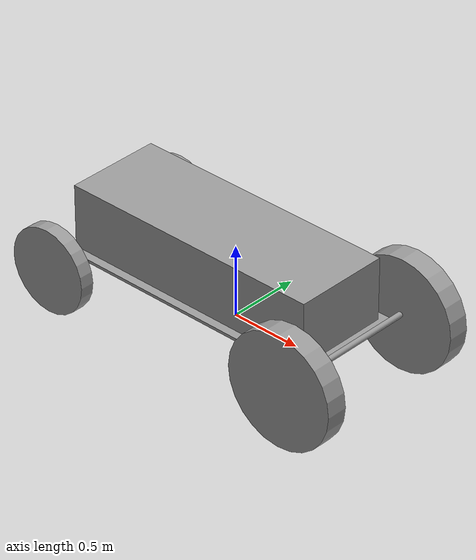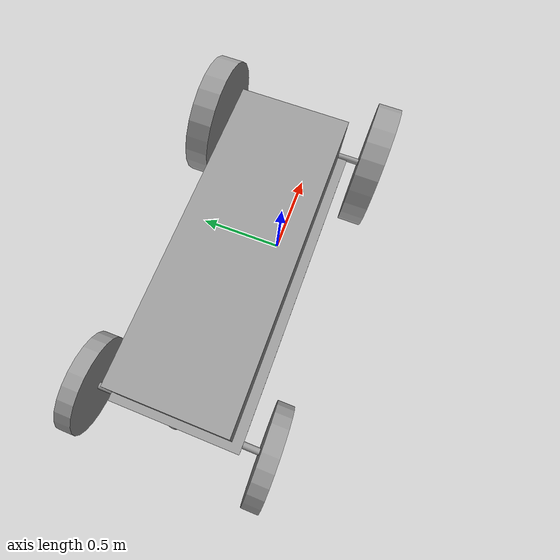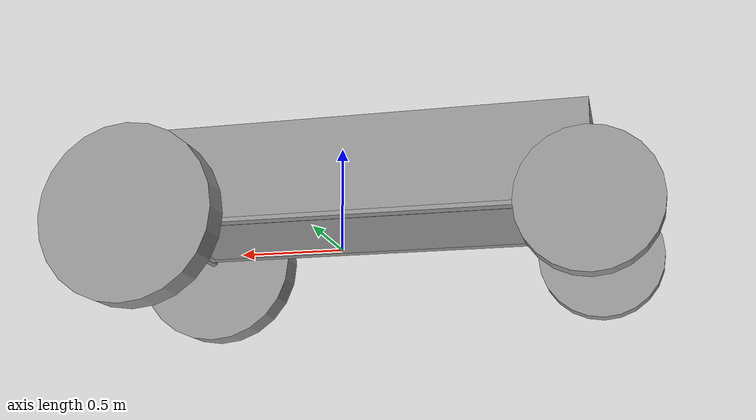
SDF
<?xml version='1.0'?>
<sdf version='1.7'>
  <model name='cart'>
    <link name='link_0'>
      <inertial>
        <mass>1</mass>
        <inertia>
          <ixx>0.0533667</ixx>
          <ixy>0</ixy>
          <ixz>0</ixz>
          <iyy>0.333367</iyy>
          <iyz>0</iyz>
          <izz>0.386667</izz>
        </inertia>
        <pose>0 0 0 0 -0 0</pose>
      </inertial>
      <pose>-0.25417 0.166804 0.035181 0 -0 0</pose>
      <gravity>1</gravity>
      <self_collide>0</self_collide>
      <kinematic>0</kinematic>
      <enable_wind>0</enable_wind>
      <visual name='visual'>
        <pose>0 0 0 0 -0 0</pose>
        <geometry>
          <box>
            <size>2 0.8 0.02</size>
          </box>
        </geometry>
        <material>
          <lighting>1</lighting>
          <script>
            <uri>file://media/materials/scripts/gazebo.material</uri>
            <name>Gazebo/Grey</name>
          </script>
          <shader type='pixel'>
            <normal_map>__default__</normal_map>
          </shader>
          <ambient>0.3 0.3 0.3 1</ambient>
          <diffuse>0.7 0.7 0.7 1</diffuse>
          <specular>0.01 0.01 0.01 1</specular>
          <emissive>0 0 0 1</emissive>
        </material>
        <transparency>0</transparency>
        <cast_shadows>1</cast_shadows>
      </visual>
      <collision name='collision'>
        <laser_retro>0</laser_retro>
        <max_contacts>10</max_contacts>
        <pose>0 0 0 0 -0 0</pose>
        <geometry>
          <box>
            <size>2 0.8 0.02</size>
          </box>
        </geometry>
        <surface>
          <friction>
            <ode>
              <mu>1</mu>
              <mu2>1</mu2>
              <fdir1>0 0 0</fdir1>
              <slip1>0</slip1>
              <slip2>0</slip2>
            </ode>
            <torsional>
              <coefficient>1</coefficient>
              <patch_radius>0</patch_radius>
              <surface_radius>0</surface_radius>
              <use_patch_radius>1</use_patch_radius>
              <ode>
                <slip>0</slip>
              </ode>
            </torsional>
          </friction>
          <bounce>
            <restitution_coefficient>0</restitution_coefficient>
            <threshold>1e+06</threshold>
          </bounce>
          <contact>
            <collide_without_contact>0</collide_without_contact>
            <collide_without_contact_bitmask>1</collide_without_contact_bitmask>
            <collide_bitmask>1</collide_bitmask>
            <ode>
              <soft_cfm>0</soft_cfm>
              <soft_erp>0.2</soft_erp>
              <kp>1e+13</kp>
              <kd>1</kd>
              <max_vel>0.01</max_vel>
              <min_depth>0</min_depth>
            </ode>
            <bullet>
              <split_impulse>1</split_impulse>
              <split_impulse_penetration_threshold>-0.01</split_impulse_penetration_threshold>
              <soft_cfm>0</soft_cfm>
              <soft_erp>0.2</soft_erp>
              <kp>1e+13</kp>
              <kd>1</kd>
            </bullet>
          </contact>
        </surface>
      </collision>
    </link>
    <link name='link_0_0'>
      <inertial>
        <mass>0.000688057</mass>
        <inertia>
          <ixx>8.16389e-07</ixx>
          <ixy>0</ixy>
          <ixz>0</ixz>
          <iyy>8.16389e-07</iyy>
          <iyz>0</iyz>
          <izz>1.43917e-06</izz>
        </inertia>
        <pose>0 0 0 0 -0 0</pose>
      </inertial>
      <pose>-1.1956 0.1668 0.015181 -9.8e-05 0.046583 -2.8e-05</pose>
      <self_collide>0</self_collide>
      <enable_wind>0</enable_wind>
      <kinematic>0</kinematic>
      <visual name='visual'>
        <pose>0 0 0 0 -0 0</pose>
        <geometry>
          <cylinder>
            <radius>0.0646783</radius>
            <length>0.0410892</length>
          </cylinder>
        </geometry>
        <material>
          <lighting>1</lighting>
          <script>
            <uri>file://media/materials/scripts/gazebo.material</uri>
            <name>Gazebo/Grey</name>
          </script>
          <shader type='pixel'/>
          <emissive>0 0 0 1</emissive>
        </material>
        <transparency>0</transparency>
        <cast_shadows>1</cast_shadows>
      </visual>
      <collision name='collision'>
        <laser_retro>0</laser_retro>
        <max_contacts>10</max_contacts>
        <pose>0 0 0 0 -0 0</pose>
        <geometry>
          <cylinder>
            <radius>0.064678</radius>
            <length>0.041089</length>
          </cylinder>
        </geometry>
        <surface>
          <friction>
            <ode>
              <mu>1</mu>
              <mu2>1</mu2>
              <fdir1>0 0 0</fdir1>
              <slip1>0</slip1>
              <slip2>0</slip2>
            </ode>
            <torsional>
              <coefficient>1</coefficient>
              <patch_radius>0</patch_radius>
              <surface_radius>0</surface_radius>
              <use_patch_radius>1</use_patch_radius>
              <ode>
                <slip>0</slip>
              </ode>
            </torsional>
          </friction>
          <bounce>
            <restitution_coefficient>0</restitution_coefficient>
            <threshold>1e+06</threshold>
          </bounce>
          <contact>
            <collide_without_contact>0</collide_without_contact>
            <collide_without_contact_bitmask>1</collide_without_contact_bitmask>
            <collide_bitmask>1</collide_bitmask>
            <ode>
              <soft_cfm>0</soft_cfm>
              <soft_erp>0.2</soft_erp>
              <kp>1e+13</kp>
              <kd>1</kd>
              <max_vel>0.01</max_vel>
              <min_depth>0</min_depth>
            </ode>
            <bullet>
              <split_impulse>1</split_impulse>
              <split_impulse_penetration_threshold>-0.01</split_impulse_penetration_threshold>
              <soft_cfm>0</soft_cfm>
              <soft_erp>0.2</soft_erp>
              <kp>1e+13</kp>
              <kd>1</kd>
            </bullet>
          </contact>
        </surface>
      </collision>
    </link>
    <link name='link_0_1'>
      <inertial>
        <mass>80</mass>
        <inertia>
          <ixx>4.52345</ixx>
          <ixy>0</ixy>
          <ixz>0</ixz>
          <iyy>25.8377</iyy>
          <iyz>0</iyz>
          <izz>27.4402</izz>
        </inertia>
        <pose>0 0 0 0 -0 0</pose>
      </inertial>
      <pose>-0.249033 0.166826 0.258067 0 -0 0</pose>
      <gravity>1</gravity>
      <self_collide>0</self_collide>
      <kinematic>0</kinematic>
      <enable_wind>0</enable_wind>
      <visual name='visual'>
        <pose>0 0 0 0 -0 0</pose>
        <geometry>
          <box>
            <size>1.91222 0.677828 0.468045</size>
          </box>
        </geometry>
        <material>
          <lighting>1</lighting>
          <script>
            <uri>file://media/materials/scripts/gazebo.material</uri>
            <name>Gazebo/Grey</name>
          </script>
          <shader type='pixel'>
            <normal_map>__default__</normal_map>
          </shader>
          <emissive>0 0 0 1</emissive>
        </material>
        <transparency>0</transparency>
        <cast_shadows>1</cast_shadows>
      </visual>
      <collision name='collision'>
        <laser_retro>0</laser_retro>
        <max_contacts>10</max_contacts>
        <pose>0 0 0 0 -0 0</pose>
        <geometry>
          <box>
            <size>1.91222 0.677828 0.468045</size>
          </box>
        </geometry>
        <surface>
          <friction>
            <ode>
              <mu>1</mu>
              <mu2>1</mu2>
              <fdir1>0 0 0</fdir1>
              <slip1>0</slip1>
              <slip2>0</slip2>
            </ode>
            <torsional>
              <coefficient>1</coefficient>
              <patch_radius>0</patch_radius>
              <surface_radius>0</surface_radius>
              <use_patch_radius>1</use_patch_radius>
              <ode>
                <slip>0</slip>
              </ode>
            </torsional>
          </friction>
          <bounce>
            <restitution_coefficient>0</restitution_coefficient>
            <threshold>1e+06</threshold>
          </bounce>
          <contact>
            <collide_without_contact>0</collide_without_contact>
            <collide_without_contact_bitmask>1</collide_without_contact_bitmask>
            <collide_bitmask>1</collide_bitmask>
            <ode>
              <soft_cfm>0</soft_cfm>
              <soft_erp>0.2</soft_erp>
              <kp>1e+13</kp>
              <kd>1</kd>
              <max_vel>0.01</max_vel>
              <min_depth>0</min_depth>
            </ode>
            <bullet>
              <split_impulse>1</split_impulse>
              <split_impulse_penetration_threshold>-0.01</split_impulse_penetration_threshold>
              <soft_cfm>0</soft_cfm>
              <soft_erp>0.2</soft_erp>
              <kp>1e+13</kp>
              <kd>1</kd>
            </bullet>
          </contact>
        </surface>
      </collision>
    </link>
    <link name='link_1'>
      <inertial>
        <mass>1</mass>
        <inertia>
          <ixx>0.145833</ixx>
          <ixy>0</ixy>
          <ixz>0</ixz>
          <iyy>0.145833</iyy>
          <iyz>0</iyz>
          <izz>0.125</izz>
        </inertia>
        <pose>0 0 0 0 -0 0</pose>
      </inertial>
      <pose>0.765833 0.166795 0.040181 1.5707 -0 0</pose>
      <gravity>1</gravity>
      <self_collide>0</self_collide>
      <kinematic>0</kinematic>
      <enable_wind>0</enable_wind>
      <visual name='visual'>
        <pose>0 0 0 0 -0 0</pose>
        <geometry>
          <cylinder>
            <radius>0.02</radius>
            <length>1.15</length>
          </cylinder>
        </geometry>
        <material>
          <lighting>1</lighting>
          <script>
            <uri>file://media/materials/scripts/gazebo.material</uri>
            <name>Gazebo/Grey</name>
          </script>
          <shader type='pixel'>
            <normal_map>__default__</normal_map>
          </shader>
          <ambient>0.3 0.3 0.3 1</ambient>
          <diffuse>0.7 0.7 0.7 1</diffuse>
          <specular>0.01 0.01 0.01 1</specular>
          <emissive>0 0 0 1</emissive>
        </material>
        <transparency>0</transparency>
        <cast_shadows>1</cast_shadows>
      </visual>
      <collision name='collision'>
        <laser_retro>0</laser_retro>
        <max_contacts>10</max_contacts>
        <pose>0 0 0 0 -0 0</pose>
        <geometry>
          <cylinder>
            <radius>0.02</radius>
            <length>1.15</length>
          </cylinder>
        </geometry>
        <surface>
          <friction>
            <ode>
              <mu>1</mu>
              <mu2>1</mu2>
              <fdir1>0 0 0</fdir1>
              <slip1>0</slip1>
              <slip2>0</slip2>
            </ode>
            <torsional>
              <coefficient>1</coefficient>
              <patch_radius>0</patch_radius>
              <surface_radius>0</surface_radius>
              <use_patch_radius>1</use_patch_radius>
              <ode>
                <slip>0</slip>
              </ode>
            </torsional>
          </friction>
          <bounce>
            <restitution_coefficient>0</restitution_coefficient>
            <threshold>1e+06</threshold>
          </bounce>
          <contact>
            <collide_without_contact>0</collide_without_contact>
            <collide_without_contact_bitmask>1</collide_without_contact_bitmask>
            <collide_bitmask>1</collide_bitmask>
            <ode>
              <soft_cfm>0</soft_cfm>
              <soft_erp>0.2</soft_erp>
              <kp>1e+13</kp>
              <kd>1</kd>
              <max_vel>0.01</max_vel>
              <min_depth>0</min_depth>
            </ode>
            <bullet>
              <split_impulse>1</split_impulse>
              <split_impulse_penetration_threshold>-0.01</split_impulse_penetration_threshold>
              <soft_cfm>0</soft_cfm>
              <soft_erp>0.2</soft_erp>
              <kp>1e+13</kp>
              <kd>1</kd>
            </bullet>
          </contact>
        </surface>
      </collision>
    </link>
    <link name='link_1_clone'>
      <inertial>
        <mass>1</mass>
        <inertia>
          <ixx>0.145833</ixx>
          <ixy>0</ixy>
          <ixz>0</ixz>
          <iyy>0.145833</iyy>
          <iyz>0</iyz>
          <izz>0.125</izz>
        </inertia>
        <pose>0 0 0 0 -0 0</pose>
      </inertial>
      <pose>-1.19699 0.166797 -0.014786 1.57059 -2e-06 2e-06</pose>
      <gravity>1</gravity>
      <self_collide>1</self_collide>
      <kinematic>0</kinematic>
      <enable_wind>0</enable_wind>
      <visual name='visual'>
        <pose>0 0 0 0 -0 0</pose>
        <geometry>
          <cylinder>
            <radius>0.02</radius>
            <length>1</length>
          </cylinder>
        </geometry>
        <material>
          <lighting>1</lighting>
          <script>
            <uri>file://media/materials/scripts/gazebo.material</uri>
            <name>Gazebo/Grey</name>
          </script>
          <shader type='pixel'>
            <normal_map>__default__</normal_map>
          </shader>
          <ambient>0.3 0.3 0.3 1</ambient>
          <diffuse>0.7 0.7 0.7 1</diffuse>
          <specular>0.01 0.01 0.01 1</specular>
          <emissive>0 0 0 1</emissive>
        </material>
        <transparency>0</transparency>
        <cast_shadows>1</cast_shadows>
      </visual>
      <collision name='collision'>
        <laser_retro>0</laser_retro>
        <max_contacts>10</max_contacts>
        <pose>0 0 0 0 -0 0</pose>
        <geometry>
          <cylinder>
            <radius>0.02</radius>
            <length>1</length>
          </cylinder>
        </geometry>
        <surface>
          <friction>
            <ode>
              <mu>1</mu>
              <mu2>1</mu2>
              <fdir1>0 0 0</fdir1>
              <slip1>0</slip1>
              <slip2>0</slip2>
            </ode>
            <torsional>
              <coefficient>1</coefficient>
              <patch_radius>0</patch_radius>
              <surface_radius>0</surface_radius>
              <use_patch_radius>1</use_patch_radius>
              <ode>
                <slip>0</slip>
              </ode>
            </torsional>
          </friction>
          <bounce>
            <restitution_coefficient>0</restitution_coefficient>
            <threshold>1e+06</threshold>
          </bounce>
          <contact>
            <collide_without_contact>0</collide_without_contact>
            <collide_without_contact_bitmask>1</collide_without_contact_bitmask>
            <collide_bitmask>1</collide_bitmask>
            <ode>
              <soft_cfm>0</soft_cfm>
              <soft_erp>0.2</soft_erp>
              <kp>1e+13</kp>
              <kd>1</kd>
              <max_vel>0.01</max_vel>
              <min_depth>0</min_depth>
            </ode>
            <bullet>
              <split_impulse>1</split_impulse>
              <split_impulse_penetration_threshold>-0.01</split_impulse_penetration_threshold>
              <soft_cfm>0</soft_cfm>
              <soft_erp>0.2</soft_erp>
              <kp>1e+13</kp>
              <kd>1</kd>
            </bullet>
          </contact>
        </surface>
      </collision>
    </link>
    <link name='link_2'>
      <inertial>
        <mass>1</mass>
        <inertia>
          <ixx>0.041875</ixx>
          <ixy>0</ixy>
          <ixz>0</ixz>
          <iyy>0.041875</iyy>
          <iyz>0</iyz>
          <izz>0.08</izz>
        </inertia>
        <pose>0 0 0 0 -0 0</pose>
      </inertial>
      <pose>0.765833 0.716795 0.040128 1.5707 -0 0</pose>
      <gravity>1</gravity>
      <self_collide>0</self_collide>
      <kinematic>0</kinematic>
      <enable_wind>0</enable_wind>
      <visual name='visual'>
        <pose>0 0 0 0 -0 0</pose>
        <geometry>
          <cylinder>
            <radius>0.4</radius>
            <length>0.15</length>
          </cylinder>
        </geometry>
        <material>
          <lighting>1</lighting>
          <script>
            <uri>file://media/materials/scripts/gazebo.material</uri>
            <name>Gazebo/Grey</name>
          </script>
          <shader type='pixel'>
            <normal_map>__default__</normal_map>
          </shader>
          <ambient>0.3 0.3 0.3 1</ambient>
          <diffuse>0.7 0.7 0.7 1</diffuse>
          <specular>0.01 0.01 0.01 1</specular>
          <emissive>0 0 0 1</emissive>
        </material>
        <transparency>0</transparency>
        <cast_shadows>1</cast_shadows>
      </visual>
      <collision name='collision'>
        <laser_retro>0</laser_retro>
        <max_contacts>10</max_contacts>
        <pose>0 0 0 0 -0 0</pose>
        <geometry>
          <cylinder>
            <radius>0.4</radius>
            <length>0.15</length>
          </cylinder>
        </geometry>
        <surface>
          <friction>
            <ode>
              <mu>1</mu>
              <mu2>1</mu2>
              <fdir1>0 0 0</fdir1>
              <slip1>0</slip1>
              <slip2>0</slip2>
            </ode>
            <torsional>
              <coefficient>1</coefficient>
              <patch_radius>0</patch_radius>
              <surface_radius>0</surface_radius>
              <use_patch_radius>1</use_patch_radius>
              <ode>
                <slip>0</slip>
              </ode>
            </torsional>
          </friction>
          <bounce>
            <restitution_coefficient>0</restitution_coefficient>
            <threshold>1e+06</threshold>
          </bounce>
          <contact>
            <collide_without_contact>0</collide_without_contact>
            <collide_without_contact_bitmask>1</collide_without_contact_bitmask>
            <collide_bitmask>1</collide_bitmask>
            <ode>
              <soft_cfm>0</soft_cfm>
              <soft_erp>0.2</soft_erp>
              <kp>1e+13</kp>
              <kd>1</kd>
              <max_vel>0.01</max_vel>
              <min_depth>0</min_depth>
            </ode>
            <bullet>
              <split_impulse>1</split_impulse>
              <split_impulse_penetration_threshold>-0.01</split_impulse_penetration_threshold>
              <soft_cfm>0</soft_cfm>
              <soft_erp>0.2</soft_erp>
              <kp>1e+13</kp>
              <kd>1</kd>
            </bullet>
          </contact>
        </surface>
      </collision>
    </link>
    <link name='link_2_clone'>
      <inertial>
        <mass>1</mass>
        <inertia>
          <ixx>0.145833</ixx>
          <ixy>0</ixy>
          <ixz>0</ixz>
          <iyy>0.145833</iyy>
          <iyz>0</iyz>
          <izz>0.125</izz>
        </inertia>
        <pose>0 0 0 0 -0 0</pose>
      </inertial>
      <pose>0.765833 -0.383205 0.040234 1.5707 -0 0</pose>
      <gravity>1</gravity>
      <self_collide>0</self_collide>
      <kinematic>0</kinematic>
      <enable_wind>0</enable_wind>
      <visual name='visual'>
        <pose>0 0 0 0 -0 0</pose>
        <geometry>
          <cylinder>
            <radius>0.4</radius>
            <length>0.15</length>
          </cylinder>
        </geometry>
        <material>
          <lighting>1</lighting>
          <script>
            <uri>file://media/materials/scripts/gazebo.material</uri>
            <name>Gazebo/Grey</name>
          </script>
          <shader type='pixel'>
            <normal_map>__default__</normal_map>
          </shader>
          <ambient>0.3 0.3 0.3 1</ambient>
          <diffuse>0.7 0.7 0.7 1</diffuse>
          <specular>0.01 0.01 0.01 1</specular>
          <emissive>0 0 0 1</emissive>
        </material>
        <transparency>0</transparency>
        <cast_shadows>1</cast_shadows>
      </visual>
      <collision name='collision'>
        <laser_retro>0</laser_retro>
        <max_contacts>10</max_contacts>
        <pose>0 0 0 0 -0 0</pose>
        <geometry>
          <cylinder>
            <radius>0.4</radius>
            <length>0.15</length>
          </cylinder>
        </geometry>
        <surface>
          <friction>
            <ode>
              <mu>1</mu>
              <mu2>1</mu2>
              <fdir1>0 0 0</fdir1>
              <slip1>0</slip1>
              <slip2>0</slip2>
            </ode>
            <torsional>
              <coefficient>1</coefficient>
              <patch_radius>0</patch_radius>
              <surface_radius>0</surface_radius>
              <use_patch_radius>1</use_patch_radius>
              <ode>
                <slip>0</slip>
              </ode>
            </torsional>
          </friction>
          <bounce>
            <restitution_coefficient>0</restitution_coefficient>
            <threshold>1e+06</threshold>
          </bounce>
          <contact>
            <collide_without_contact>0</collide_without_contact>
            <collide_without_contact_bitmask>1</collide_without_contact_bitmask>
            <collide_bitmask>1</collide_bitmask>
            <ode>
              <soft_cfm>0</soft_cfm>
              <soft_erp>0.2</soft_erp>
              <kp>1e+13</kp>
              <kd>1</kd>
              <max_vel>0.01</max_vel>
              <min_depth>0</min_depth>
            </ode>
            <bullet>
              <split_impulse>1</split_impulse>
              <split_impulse_penetration_threshold>-0.01</split_impulse_penetration_threshold>
              <soft_cfm>0</soft_cfm>
              <soft_erp>0.2</soft_erp>
              <kp>1e+13</kp>
              <kd>1</kd>
            </bullet>
          </contact>
        </surface>
      </collision>
    </link>
    <link name='link_2_clone_0'>
      <inertial>
        <mass>5</mass>
        <inertia>
          <ixx>0.209375</ixx>
          <ixy>0</ixy>
          <ixz>0</ixz>
          <iyy>0.209375</iyy>
          <iyz>0</iyz>
          <izz>0.4</izz>
        </inertia>
        <pose>0 0 0 0 -0 0</pose>
      </inertial>
      <pose>-1.19699 -0.383203 -0.014676 1.57067 -1e-06 1e-06</pose>
      <gravity>1</gravity>
      <self_collide>1</self_collide>
      <kinematic>0</kinematic>
      <enable_wind>0</enable_wind>
      <visual name='visual'>
        <pose>0 0 0 0 -0 0</pose>
        <geometry>
          <cylinder>
            <radius>0.3</radius>
            <length>0.1</length>
          </cylinder>
        </geometry>
        <material>
          <lighting>1</lighting>
          <script>
            <uri>file://media/materials/scripts/gazebo.material</uri>
            <name>Gazebo/Grey</name>
          </script>
          <shader type='pixel'>
            <normal_map>__default__</normal_map>
          </shader>
          <ambient>0.3 0.3 0.3 1</ambient>
          <diffuse>0.7 0.7 0.7 1</diffuse>
          <specular>0.01 0.01 0.01 1</specular>
          <emissive>0 0 0 1</emissive>
        </material>
        <transparency>0</transparency>
        <cast_shadows>1</cast_shadows>
      </visual>
      <collision name='collision'>
        <laser_retro>0</laser_retro>
        <max_contacts>10</max_contacts>
        <pose>0 0 0 0 -0 0</pose>
        <geometry>
          <cylinder>
            <radius>0.3</radius>
            <length>0.1</length>
          </cylinder>
        </geometry>
        <surface>
          <friction>
            <ode>
              <mu>1</mu>
              <mu2>1</mu2>
              <fdir1>0 0 0</fdir1>
              <slip1>0</slip1>
              <slip2>0</slip2>
            </ode>
            <torsional>
              <coefficient>1</coefficient>
              <patch_radius>0</patch_radius>
              <surface_radius>0</surface_radius>
              <use_patch_radius>1</use_patch_radius>
              <ode>
                <slip>0</slip>
              </ode>
            </torsional>
          </friction>
          <bounce>
            <restitution_coefficient>0</restitution_coefficient>
            <threshold>1e+06</threshold>
          </bounce>
          <contact>
            <collide_without_contact>0</collide_without_contact>
            <collide_without_contact_bitmask>1</collide_without_contact_bitmask>
            <collide_bitmask>1</collide_bitmask>
            <ode>
              <soft_cfm>0</soft_cfm>
              <soft_erp>0.2</soft_erp>
              <kp>1e+13</kp>
              <kd>1</kd>
              <max_vel>0.01</max_vel>
              <min_depth>0</min_depth>
            </ode>
            <bullet>
              <split_impulse>1</split_impulse>
              <split_impulse_penetration_threshold>-0.01</split_impulse_penetration_threshold>
              <soft_cfm>0</soft_cfm>
              <soft_erp>0.2</soft_erp>
              <kp>1e+13</kp>
              <kd>1</kd>
            </bullet>
          </contact>
        </surface>
      </collision>
    </link>
    <link name='link_2_clone_0_clone'>
      <inertial>
        <mass>5</mass>
        <inertia>
          <ixx>0.209375</ixx>
          <ixy>0</ixy>
          <ixz>0</ixz>
          <iyy>0.209375</iyy>
          <iyz>0</iyz>
          <izz>0.4</izz>
        </inertia>
        <pose>0 0 0 0 -0 0</pose>
      </inertial>
      <pose>-1.19699 0.716797 -0.014897 1.5707 -0 1e-06</pose>
      <gravity>1</gravity>
      <self_collide>1</self_collide>
      <kinematic>0</kinematic>
      <enable_wind>0</enable_wind>
      <visual name='visual'>
        <pose>0 0 0 0 -0 0</pose>
        <geometry>
          <cylinder>
            <radius>0.3</radius>
            <length>0.1</length>
          </cylinder>
        </geometry>
        <material>
          <lighting>1</lighting>
          <script>
            <uri>file://media/materials/scripts/gazebo.material</uri>
            <name>Gazebo/Grey</name>
          </script>
          <shader type='pixel'>
            <normal_map>__default__</normal_map>
          </shader>
          <ambient>0.3 0.3 0.3 1</ambient>
          <diffuse>0.7 0.7 0.7 1</diffuse>
          <specular>0.01 0.01 0.01 1</specular>
          <emissive>0 0 0 1</emissive>
        </material>
        <transparency>0</transparency>
        <cast_shadows>1</cast_shadows>
      </visual>
      <collision name='collision'>
        <laser_retro>0</laser_retro>
        <max_contacts>10</max_contacts>
        <pose>0 0 0 0 -0 0</pose>
        <geometry>
          <cylinder>
            <radius>0.3</radius>
            <length>0.1</length>
          </cylinder>
        </geometry>
        <surface>
          <friction>
            <ode>
              <mu>1</mu>
              <mu2>1</mu2>
              <fdir1>0 0 0</fdir1>
              <slip1>0</slip1>
              <slip2>0</slip2>
            </ode>
            <torsional>
              <coefficient>1</coefficient>
              <patch_radius>0</patch_radius>
              <surface_radius>0</surface_radius>
              <use_patch_radius>1</use_patch_radius>
              <ode>
                <slip>0</slip>
              </ode>
            </torsional>
          </friction>
          <bounce>
            <restitution_coefficient>0</restitution_coefficient>
            <threshold>1e+06</threshold>
          </bounce>
          <contact>
            <collide_without_contact>0</collide_without_contact>
            <collide_without_contact_bitmask>1</collide_without_contact_bitmask>
            <collide_bitmask>1</collide_bitmask>
            <ode>
              <soft_cfm>0</soft_cfm>
              <soft_erp>0.2</soft_erp>
              <kp>1e+13</kp>
              <kd>1</kd>
              <max_vel>0.01</max_vel>
              <min_depth>0</min_depth>
            </ode>
            <bullet>
              <split_impulse>1</split_impulse>
              <split_impulse_penetration_threshold>-0.01</split_impulse_penetration_threshold>
              <soft_cfm>0</soft_cfm>
              <soft_erp>0.2</soft_erp>
              <kp>1e+13</kp>
              <kd>1</kd>
            </bullet>
          </contact>
        </surface>
      </collision>
    </link>
    <joint name='link_0_0_JOINT_2' type='revolute'>
      <parent>link_0_0</parent>
      <child>link_1_clone</child>
      <pose>0 0 0 0 -0 0</pose>
      <axis>
        <xyz>0 0 1</xyz>
        <limit>
          <lower>-1.79769e+308</lower>
          <upper>1.79769e+308</upper>
          <effort>-1</effort>
          <velocity>-1</velocity>
        </limit>
        <dynamics>
          <spring_reference>0</spring_reference>
          <spring_stiffness>0</spring_stiffness>
          <damping>0</damping>
          <friction>1</friction>
        </dynamics>
      </axis>
      <physics>
        <ode>
          <limit>
            <cfm>0</cfm>
            <erp>0.2</erp>
          </limit>
          <suspension>
            <cfm>0</cfm>
            <erp>0.2</erp>
          </suspension>
        </ode>
      </physics>
    </joint>
    <joint name='link_0_JOINT_0_0' type='fixed'>
      <parent>link_0</parent>
      <child>link_0_1</child>
      <pose>0 0 0 0 -0 0</pose>
      <physics>
        <ode>
          <limit>
            <cfm>0</cfm>
            <erp>0.2</erp>
          </limit>
          <suspension>
            <cfm>0</cfm>
            <erp>0.2</erp>
          </suspension>
        </ode>
      </physics>
    </joint>
    <joint name='link_0_JOINT_0' type='revolute'>
      <parent>link_0</parent>
      <child>link_0_0</child>
      <pose>0 0 0 0 -0 0</pose>
      <axis>
        <xyz>0 0 1</xyz>
        <limit>
          <lower>-99999</lower>
          <upper>99999</upper>
          <effort>-1</effort>
          <velocity>-1</velocity>
        </limit>
        <dynamics>
          <spring_reference>0</spring_reference>
          <spring_stiffness>0</spring_stiffness>
          <damping>0</damping>
          <friction>0</friction>
        </dynamics>
      </axis>
      <physics>
        <ode>
          <limit>
            <cfm>0</cfm>
            <erp>0.2</erp>
          </limit>
          <suspension>
            <cfm>0</cfm>
            <erp>0.2</erp>
          </suspension>
        </ode>
      </physics>
    </joint>
    <joint name='link_0_JOINT_12' type='revolute'>
      <parent>link_0</parent>
      <child>link_1</child>
      <pose>0 0 0 0 -0 0</pose>
      <axis>
        <xyz>0 0 1</xyz>
        <limit>
          <lower>-1.79769e+308</lower>
          <upper>1.79769e+308</upper>
          <effort>-1</effort>
          <velocity>-1</velocity>
        </limit>
        <dynamics>
          <spring_reference>0</spring_reference>
          <spring_stiffness>0</spring_stiffness>
          <damping>0</damping>
          <friction>1</friction>
        </dynamics>
      </axis>
      <physics>
        <ode>
          <limit>
            <cfm>0</cfm>
            <erp>0.2</erp>
          </limit>
          <suspension>
            <cfm>0</cfm>
            <erp>0.2</erp>
          </suspension>
        </ode>
      </physics>
    </joint>
    <joint name='link_1_JOINT_7' type='fixed'>
      <parent>link_1</parent>
      <child>link_2_clone</child>
      <pose>0 0 0 0 -0 0</pose>
      <physics>
        <ode>
          <limit>
            <cfm>0</cfm>
            <erp>0.2</erp>
          </limit>
          <suspension>
            <cfm>0</cfm>
            <erp>0.2</erp>
          </suspension>
        </ode>
      </physics>
    </joint>
    <joint name='link_1_JOINT_8' type='fixed'>
      <parent>link_1</parent>
      <child>link_2</child>
      <pose>0 0 0 0 -0 0</pose>
      <physics>
        <ode>
          <limit>
            <cfm>0</cfm>
            <erp>0.2</erp>
          </limit>
          <suspension>
            <cfm>0</cfm>
            <erp>0.2</erp>
          </suspension>
        </ode>
      </physics>
    </joint>
    <joint name='link_1_clone_JOINT_3' type='fixed'>
      <parent>link_1_clone</parent>
      <child>link_2_clone_0</child>
      <pose>0 0 0 0 -0 0</pose>
      <physics>
        <ode>
          <limit>
            <cfm>0</cfm>
            <erp>0.2</erp>
          </limit>
          <suspension>
            <cfm>0</cfm>
            <erp>0.2</erp>
          </suspension>
        </ode>
      </physics>
    </joint>
    <joint name='link_1_clone_JOINT_4' type='fixed'>
      <parent>link_1_clone</parent>
      <child>link_2_clone_0_clone</child>
      <pose>0 0 0 0 -0 0</pose>
      <physics>
        <ode>
          <limit>
            <cfm>0</cfm>
            <erp>0.2</erp>
          </limit>
          <suspension>
            <cfm>0</cfm>
            <erp>0.2</erp>
          </suspension>
        </ode>
      </physics>
    </joint>
    <static>0</static>
    <allow_auto_disable>1</allow_auto_disable>
  </model>
</sdf>
